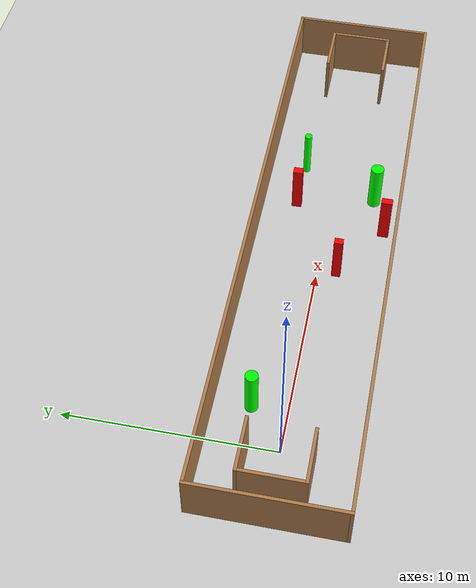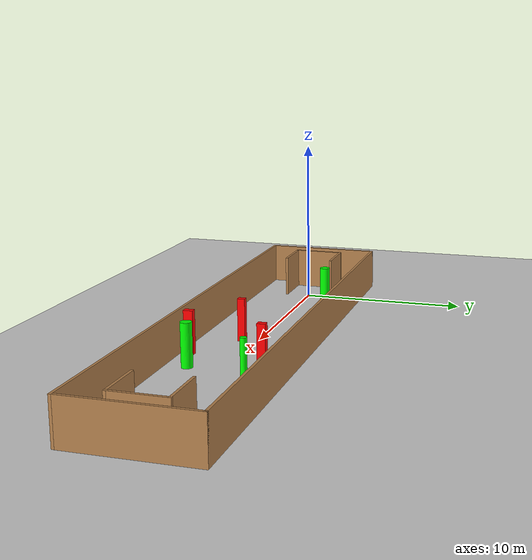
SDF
<sdf version="1.7">
 <world name="default">
  <light name="sun" type="directional">
   <pose>0 0 10 0 -0 0</pose>
   <diffuse>0.8 0.8 0.8 1</diffuse>
   <specular>0.2 0.2 0.2 1</specular>
   <attenuation>
    <range>1000</range>
    <constant>0.9</constant>
    <linear>0.01</linear>
    <quadratic>0.001</quadratic>
   </attenuation>
   <direction>-0.5 0.1 -0.9</direction>
   <spot><inner_angle>0</inner_angle><outer_angle>0</outer_angle><falloff>0</falloff></spot>
  </light>
  <model name="ground_plane">
   <static>1</static>
   <link name="link">
    <collision name="collision">
     <geometry><plane><normal>0 0 1</normal><size>100 100</size></plane></geometry>
     <surface>
      <contact><collide_bitmask>65535</collide_bitmask></contact>
      <friction><ode><mu>100</mu><mu2>50</mu2></ode></friction>
     </surface>
    </collision>
    <visual name="visual">
     <cast_shadows>0</cast_shadows>
     <geometry><plane><normal>0 0 1</normal><size>100 100</size></plane></geometry>
     <material>
      <script><uri>file://media/materials/scripts/gazebo.material</uri><name>Gazebo/Grey</name></script>
     </material>
    </visual>
   </link>
  </model>
  <gravity>0 0 -9.8</gravity>
  <magnetic_field>6e-06 2.3e-05 -4.2e-05</magnetic_field>
  <atmosphere type="adiabatic"/>
  <physics type="ode">
   <max_step_size>0.001</max_step_size>
   <real_time_factor>1</real_time_factor>
   <real_time_update_rate>1000</real_time_update_rate>
  </physics>
  <scene><ambient>0.4 0.4 0.4 1</ambient><background>0.7 0.7 0.7 1</background><shadows>1</shadows></scene>
  <spherical_coordinates>
   <surface_model>EARTH_WGS84</surface_model>
   <latitude_deg>0</latitude_deg>
   <longitude_deg>0</longitude_deg>
   <elevation>0</elevation>
   <heading_deg>0</heading_deg>
  </spherical_coordinates>
  <model name="my_base_walls">
   <link name="Wall_0">
    <collision name="Wall_0_Collision">
     <geometry><box><size>7.15 0.15 2.5</size></box></geometry>
     <pose>0 0 1.25 0 -0 0</pose>
    </collision>
    <visual name="Wall_0_Visual">
     <pose>0 0 1.25 0 -0 0</pose>
     <geometry><box><size>7.15 0.15 2.5</size></box></geometry>
     <material>
      <script><uri>file://media/materials/scripts/gazebo.material</uri><name>Gazebo/Wood</name></script>
      <ambient>1 1 1 1</ambient>
     </material>
     <meta><layer>0</layer></meta>
    </visual>
    <pose>-15 0 0 0 -0 1.5708</pose>
   </link>
   <link name="Wall_10">
    <collision name="Wall_10_Collision">
     <geometry><box><size>2.65 0.15 2.5</size></box></geometry>
     <pose>0 0 1.25 0 -0 0</pose>
    </collision>
    <visual name="Wall_10_Visual">
     <pose>0 0 1.25 0 -0 0</pose>
     <geometry><box><size>2.65 0.15 2.5</size></box></geometry>
     <material>
      <script><uri>file://media/materials/scripts/gazebo.material</uri><name>Gazebo/Wood</name></script>
      <ambient>1 1 1 1</ambient>
     </material>
     <meta><layer>0</layer></meta>
    </visual>
    <pose>-12.75 -1.5 0 0 -0 0</pose>
   </link>
   <link name="Wall_12">
    <collision name="Wall_12_Collision">
     <geometry><box><size>2.65 0.15 2.5</size></box></geometry>
     <pose>0 0 1.25 0 -0 0</pose>
    </collision>
    <visual name="Wall_12_Visual">
     <pose>0 0 1.25 0 -0 0</pose>
     <geometry><box><size>2.65 0.15 2.5</size></box></geometry>
     <material>
      <script><uri>file://media/materials/scripts/gazebo.material</uri><name>Gazebo/Wood</name></script>
      <ambient>1 1 1 1</ambient>
     </material>
     <meta><layer>0</layer></meta>
    </visual>
    <pose>-12.75 1.5 0 0 -0 0</pose>
   </link>
   <link name="Wall_14">
    <collision name="Wall_14_Collision">
     <geometry><box><size>3.15 0.15 2.5</size></box></geometry>
     <pose>0 0 1.25 0 -0 0</pose>
    </collision>
    <visual name="Wall_14_Visual">
     <pose>0 0 1.25 0 -0 0</pose>
     <geometry><box><size>3.15 0.15 2.5</size></box></geometry>
     <material>
      <script><uri>file://media/materials/scripts/gazebo.material</uri><name>Gazebo/Wood</name></script>
      <ambient>1 1 1 1</ambient>
     </material>
     <meta><layer>0</layer></meta>
    </visual>
    <pose>14 0 0 0 -0 -1.5708</pose>
   </link>
   <link name="Wall_15">
    <collision name="Wall_15_Collision">
     <geometry><box><size>2.65 0.15 2.5</size></box></geometry>
     <pose>0 0 1.25 0 -0 0</pose>
    </collision>
    <visual name="Wall_15_Visual">
     <pose>0 0 1.25 0 -0 0</pose>
     <geometry><box><size>2.65 0.15 2.5</size></box></geometry>
     <material>
      <script><uri>file://media/materials/scripts/gazebo.material</uri><name>Gazebo/Wood</name></script>
      <ambient>1 1 1 1</ambient>
     </material>
     <meta><layer>0</layer></meta>
    </visual>
    <pose>12.75 -1.5 0 0 -0 3.14159</pose>
   </link>
   <link name="Wall_17">
    <collision name="Wall_17_Collision">
     <geometry><box><size>2.65 0.15 2.5</size></box></geometry>
     <pose>0 0 1.25 0 -0 0</pose>
    </collision>
    <visual name="Wall_17_Visual">
     <pose>0 0 1.25 0 -0 0</pose>
     <geometry><box><size>2.65 0.15 2.5</size></box></geometry>
     <material>
      <script><uri>file://media/materials/scripts/gazebo.material</uri><name>Gazebo/Wood</name></script>
      <ambient>1 1 1 1</ambient>
     </material>
     <meta><layer>0</layer></meta>
    </visual>
    <pose>12.75 1.5 0 0 -0 3.14159</pose>
   </link>
   <link name="Wall_2">
    <collision name="Wall_2_Collision">
     <geometry><box><size>30.15 0.15 2.5</size></box></geometry>
     <pose>0 0 1.25 0 -0 0</pose>
    </collision>
    <visual name="Wall_2_Visual">
     <pose>0 0 1.25 0 -0 0</pose>
     <geometry><box><size>30.15 0.15 2.5</size></box></geometry>
     <material>
      <script><uri>file://media/materials/scripts/gazebo.material</uri><name>Gazebo/Wood</name></script>
      <ambient>1 1 1 1</ambient>
     </material>
     <meta><layer>0</layer></meta>
    </visual>
    <pose>-0 -3.5 0 0 -0 0</pose>
   </link>
   <link name="Wall_4">
    <collision name="Wall_4_Collision">
     <geometry><box><size>30.15 0.15 2.5</size></box></geometry>
     <pose>0 0 1.25 0 -0 0</pose>
    </collision>
    <visual name="Wall_4_Visual">
     <pose>0 0 1.25 0 -0 0</pose>
     <geometry><box><size>30.15 0.15 2.5</size></box></geometry>
     <material>
      <script><uri>file://media/materials/scripts/gazebo.material</uri><name>Gazebo/Wood</name></script>
      <ambient>1 1 1 1</ambient>
     </material>
     <meta><layer>0</layer></meta>
    </visual>
    <pose>-0 3.5 0 0 -0 0</pose>
   </link>
   <link name="Wall_6">
    <collision name="Wall_6_Collision">
     <geometry><box><size>7.15 0.15 2.5</size></box></geometry>
     <pose>0 0 1.25 0 -0 0</pose>
    </collision>
    <visual name="Wall_6_Visual">
     <pose>0 0 1.25 0 -0 0</pose>
     <geometry><box><size>7.15 0.15 2.5</size></box></geometry>
     <material>
      <script><uri>file://media/materials/scripts/gazebo.material</uri><name>Gazebo/Wood</name></script>
      <ambient>1 1 1 1</ambient>
     </material>
     <meta><layer>0</layer></meta>
    </visual>
    <pose>15 0 0 0 -0 -1.5708</pose>
   </link>
   <link name="Wall_9">
    <collision name="Wall_9_Collision">
     <geometry><box><size>3.15 0.15 2.5</size></box></geometry>
     <pose>0 0 1.25 0 -0 0</pose>
    </collision>
    <visual name="Wall_9_Visual">
     <pose>0 0 1.25 0 -0 0</pose>
     <geometry><box><size>3.15 0.15 2.5</size></box></geometry>
     <material>
      <script><uri>file://media/materials/scripts/gazebo.material</uri><name>Gazebo/Wood</name></script>
      <ambient>1 1 1 1</ambient>
     </material>
     <meta><layer>0</layer></meta>
    </visual>
    <pose>-14 0 0 0 -0 -1.5708</pose>
   </link>
   <static>1</static>
   <pose>11.5 0 0 0 -0 0</pose>
  </model>
  <model name="cylinder1">
   <static>1</static>
   <link name="link">
    <inertial>
     <mass>1</mass>
     <inertia><ixx>0.5</ixx><ixy>0</ixy><ixz>0</ixz><iyy>0.5</iyy><iyz>0</iyz><izz>1</izz></inertia>
    </inertial>
    <collision name="collision">
     <geometry><cylinder><radius>0.3220779751575577</radius><length>2.5</length></cylinder></geometry>
    </collision>
    <visual name="visual">
     <geometry><cylinder><radius>0.3220779751575577</radius><length>2.5</length></cylinder></geometry>
     <material>
      <ambient>0 1 0 1</ambient>
      <diffuse>0 1 0 1</diffuse>
      <specular>0.1 0.1 0.1 1</specular>
      <emissive>0 0 0 0</emissive>
     </material>
    </visual>
   </link>
   <pose>15.45145580286545 -2.1555041664369847 1.25 0 0 0</pose>
  </model>
  <model name="cylinder2">
   <static>1</static>
   <link name="link">
    <inertial>
     <mass>1</mass>
     <inertia><ixx>0.5</ixx><ixy>0</ixy><ixz>0</ixz><iyy>0.5</iyy><iyz>0</iyz><izz>1</izz></inertia>
    </inertial>
    <collision name="collision">
     <geometry><cylinder><radius>0.18197375039285268</radius><length>2.5</length></cylinder></geometry>
    </collision>
    <visual name="visual">
     <geometry><cylinder><radius>0.18197375039285268</radius><length>2.5</length></cylinder></geometry>
     <material>
      <ambient>0 1 0 1</ambient>
      <diffuse>0 1 0 1</diffuse>
      <specular>0.1 0.1 0.1 1</specular>
      <emissive>0 0 0 0</emissive>
     </material>
    </visual>
   </link>
   <pose>17.10275933290538 1.631829218258023 1.25 0 0 0</pose>
  </model>
  <model name="cylinder3">
   <static>1</static>
   <link name="link">
    <inertial>
     <mass>1</mass>
     <inertia><ixx>0.5</ixx><ixy>0</ixy><ixz>0</ixz><iyy>0.5</iyy><iyz>0</iyz><izz>1</izz></inertia>
    </inertial>
    <collision name="collision">
     <geometry><cylinder><radius>0.3023512712557954</radius><length>2.5</length></cylinder></geometry>
    </collision>
    <visual name="visual">
     <geometry><cylinder><radius>0.3023512712557954</radius><length>2.5</length></cylinder></geometry>
     <material>
      <ambient>0 1 0 1</ambient>
      <diffuse>0 1 0 1</diffuse>
      <specular>0.1 0.1 0.1 1</specular>
      <emissive>0 0 0 0</emissive>
     </material>
    </visual>
   </link>
   <pose>2.0582195660115694 1.6926177374666729 1.25 0 0 0</pose>
  </model>
  <model name="box1">
   <static>1</static>
   <link name="link">
    <inertial>
     <mass>1</mass>
     <inertia><ixx>0.083</ixx><ixy>0</ixy><ixz>0</ixz><iyy>0.083</iyy><iyz>0</iyz><izz>0.083</izz></inertia>
    </inertial>
    <collision name="collision">
     <geometry><box><size>0.3379875689481431 0.433243411714824 2.5</size></box></geometry>
    </collision>
    <visual name="visual">
     <geometry><box><size>0.3379875689481431 0.433243411714824 2.5</size></box></geometry>
     <material>
      <ambient>1 0 0 1</ambient>
      <diffuse>1 0 0 1</diffuse>
      <specular>0.1 0.1 0.1 1</specular>
      <emissive>0 0 0 0</emissive>
     </material>
    </visual>
    <sensor name="my_contact" type="contact">
     <contact><collision>box_collision</collision><topic>__default_topic__</topic></contact>
    </sensor>
   </link>
   <pose>10.371894414087985 -0.9246020240507269 1.25 0 0 0</pose>
  </model>
  <model name="box2">
   <static>1</static>
   <link name="link">
    <inertial>
     <mass>1</mass>
     <inertia><ixx>0.083</ixx><ixy>0</ixy><ixz>0</ixz><iyy>0.083</iyy><iyz>0</iyz><izz>0.083</izz></inertia>
    </inertial>
    <collision name="collision">
     <geometry><box><size>0.3426624740989841 0.5461830709858178 2.5</size></box></geometry>
    </collision>
    <visual name="visual">
     <geometry><box><size>0.3426624740989841 0.5461830709858178 2.5</size></box></geometry>
     <material>
      <ambient>1 0 0 1</ambient>
      <diffuse>1 0 0 1</diffuse>
      <specular>0.1 0.1 0.1 1</specular>
      <emissive>0 0 0 0</emissive>
     </material>
    </visual>
    <sensor name="my_contact" type="contact">
     <contact><collision>box_collision</collision><topic>__default_topic__</topic></contact>
    </sensor>
   </link>
   <pose>13.36605483040491 -2.8862120055049845 1.25 0 0 0</pose>
  </model>
  <model name="box3">
   <static>1</static>
   <link name="link">
    <inertial>
     <mass>1</mass>
     <inertia><ixx>0.083</ixx><ixy>0</ixy><ixz>0</ixz><iyy>0.083</iyy><iyz>0</iyz><izz>0.083</izz></inertia>
    </inertial>
    <collision name="collision">
     <geometry><box><size>0.36750354513803707 0.47658202352128043 2.5</size></box></geometry>
    </collision>
    <visual name="visual">
     <geometry><box><size>0.36750354513803707 0.47658202352128043 2.5</size></box></geometry>
     <material>
      <ambient>1 0 0 1</ambient>
      <diffuse>1 0 0 1</diffuse>
      <specular>0.1 0.1 0.1 1</specular>
      <emissive>0 0 0 0</emissive>
     </material>
    </visual>
    <sensor name="my_contact" type="contact">
     <contact><collision>box_collision</collision><topic>__default_topic__</topic></contact>
    </sensor>
   </link>
   <pose>14.580542762658794 1.7361113701508746 1.25 0 0 0</pose>
  </model>
 </world>
</sdf>
